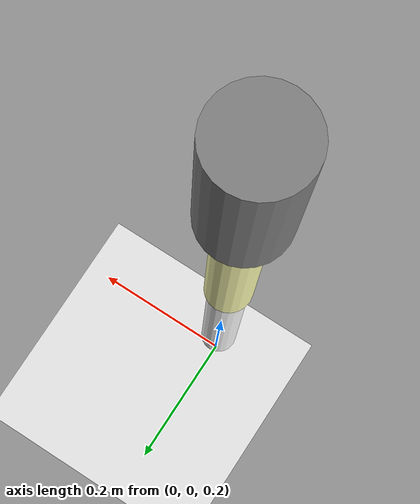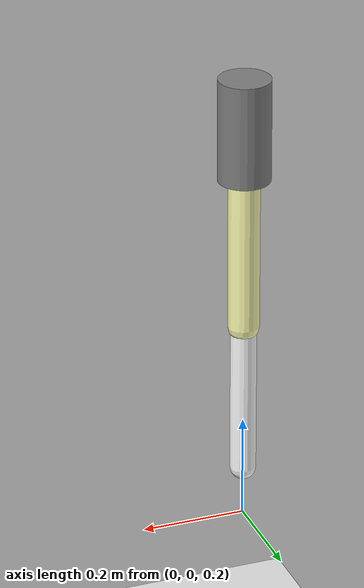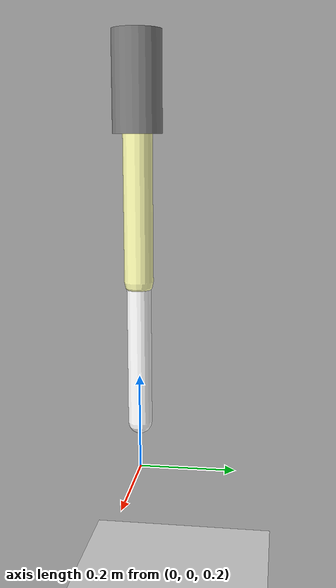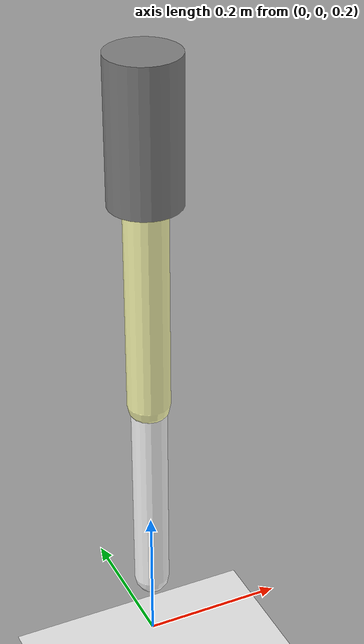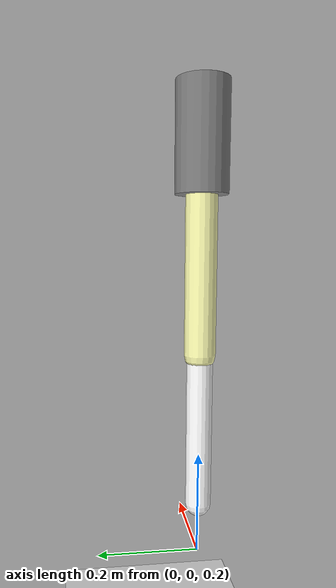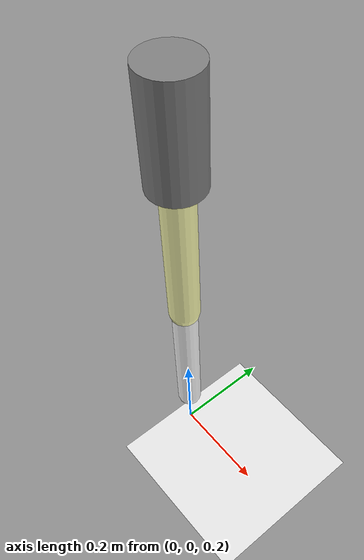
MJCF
<mujoco model="2d_arm">
    <option timestep="0.001" gravity="0 0 -9.81"/>

    <worldbody>
        <light pos="0 0 3"/>
        <geom type="plane" size="10 10 0.1" rgba="0.9 0.9 0.9 1"/>

        <!-- Fixed base pillar -->
        <body name="base" pos="0 0 1">
            <geom type="cylinder" size="0.05 0.1" rgba="0.5 0.5 0.5 1"/>

            <!-- Link 1 (upper link) -->
            <body name="link1" pos="0 0 0">
                <joint name="joint1" type="hinge" axis="0 1 0"/>
                <geom type="capsule" fromto="0 0 0 0 0 -0.4" size="0.03" rgba="1 1 0.7 1"/>

                <!-- Link 2 (lower link) -->
                <body name="link2" pos="0 0 -0.4">
                    <joint name="joint2" type="hinge" axis="0 1 0"/>
                    <geom type="capsule" fromto="0 0 0 0 0 -0.3" size="0.025" rgba="4 2 1 1"/>
                </body>
            </body>
        </body>
    </worldbody>

    <actuator>
        <position name="servo1" joint="joint1" kp="100" kv="10"/>
        <position name="servo2" joint="joint2" kp="50" kv="5"/>
    </actuator>
</mujoco>
